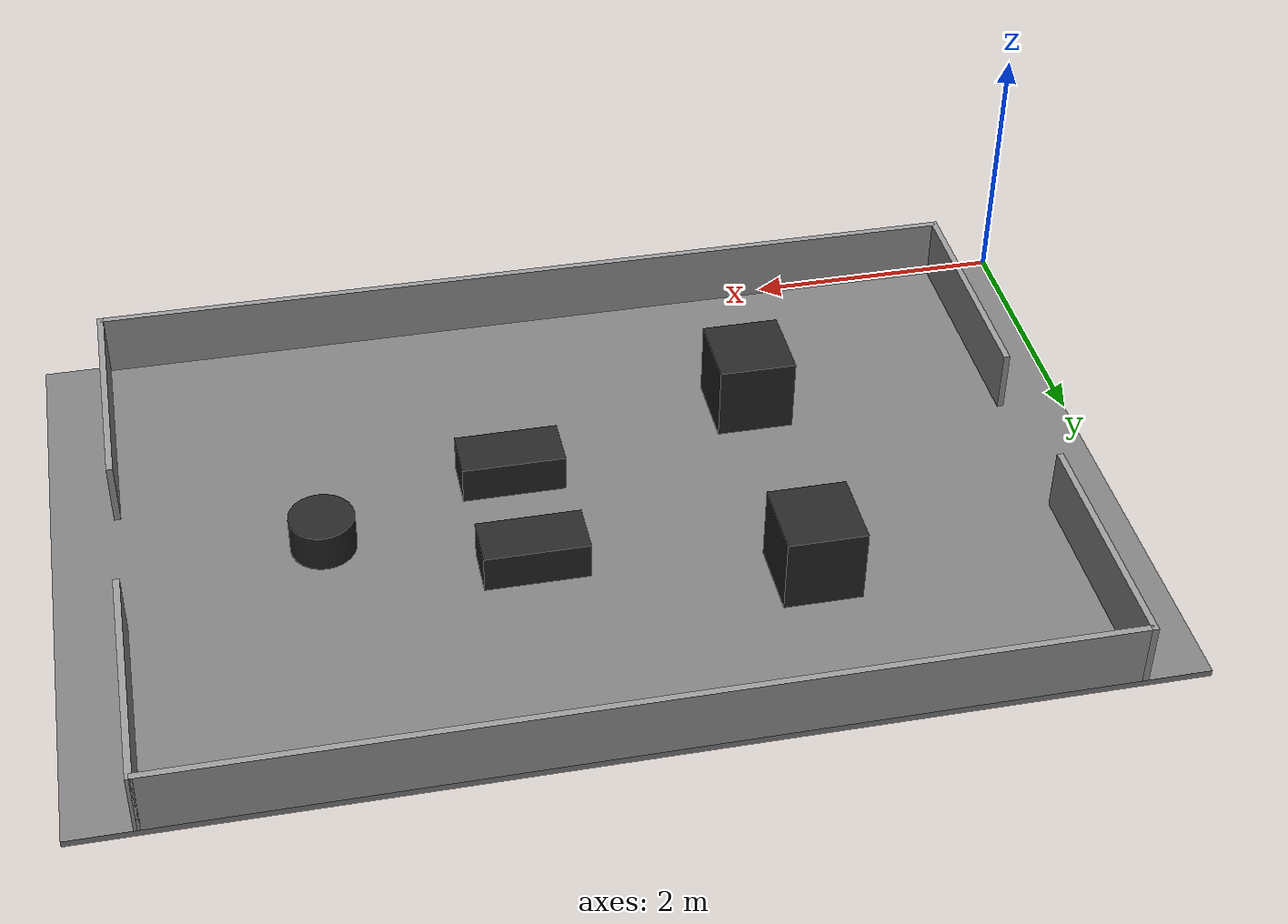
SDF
<?xml version="1.0" ?>
<sdf version="1.6">
  <world name="robot_world">

    <!-- 物理引擎配置                                                   -->
    <physics type="ode">
      <max_step_size>0.001</max_step_size>
      <real_time_factor>1.0</real_time_factor>
      <real_time_update_rate>1000</real_time_update_rate>
    </physics>

    <!-- 场景配置                                                       -->
    <!-- 长8m x 宽5m, 灰色水泥质感地面, 0.05m高                        -->
    <scene>
      <ambient>0.5 0.5 0.5 1.0</ambient>
      <background>0.7 0.7 0.7 1.0</background>
      <shadows>false</shadows>
    </scene>

    <!-- 光照 -->
    <light type="directional" name="sun">
      <pose>0 0 10 0 0 0</pose>
      <diffuse>0.8 0.8 0.8 1</diffuse>
      <specular>0.2 0.2 0.2 1</specular>
      <direction>-0.5 0.5 -0.9</direction>
    </light>

    <!-- 地面 (长8m x 宽5m x 高0.05m, 灰色水泥质感)                   -->
    <model name="ground_plane">
      <static>true</static>
      <pose>4.0 2.5 -0.025 0 0 0</pose>
      <link name="link">
        <visual name="visual">
          <geometry>
            <box>
              <size>8.0 5.0 0.05</size>
            </box>
          </geometry>
          <material>
            <ambient>0.5 0.5 0.5 1</ambient>
            <diffuse>0.5 0.5 0.5 1</diffuse>
            <specular>0.3 0.3 0.3 1</specular>
          </material>
        </visual>
        <collision name="collision">
          <geometry>
            <box>
              <size>8.0 5.0 0.05</size>
            </box>
          </geometry>
          <surface>
            <friction>
              <ode>
                <mu>1.0</mu>
                <mu2>1.0</mu2>
              </ode>
            </friction>
          </surface>
        </collision>
        <inertial>
          <mass>1000</mass>
          <inertia>
            <ixx>1000</ixx>
            <ixy>0</ixy>
            <ixz>0</ixz>
            <iyy>1000</iyy>
            <iyz>0</iyz>
            <izz>1000</izz>
          </inertia>
        </inertial>
      </link>
    </model>

    <!-- 墙壁围栏                                                      -->
    <!-- 入口: 左侧中间 x=0.5, y=1.9~3.1, 宽度1.2m                    -->
    <!-- 出口: 右侧中间 x=7.5, y=1.9~3.1, 宽度1.2m                    -->
    <!-- 墙高: 0.5m, 墙厚: 0.05m                                      -->

    <!-- 左墙 - 下段 (入口下方) -->
    <model name="wall_left_bottom">
      <static>true</static>
      <pose>0.5 0.95 0.25 0 0 0</pose>
      <link name="link">
        <visual name="visual">
          <geometry>
            <box><size>0.05 1.9 0.5</size></box>
          </geometry>
          <material>
            <ambient>0.6 0.6 0.6 1</ambient>
            <diffuse>0.6 0.6 0.6 1</diffuse>
          </material>
        </visual>
        <collision name="collision">
          <geometry>
            <box><size>0.05 1.9 0.5</size></box>
          </geometry>
        </collision>
        <inertial>
          <mass>100</mass>
          <inertia>
            <ixx>100</ixx><ixy>0</ixy><ixz>0</ixz>
            <iyy>100</iyy><iyz>0</iyz><izz>100</izz>
          </inertia>
        </inertial>
      </link>
    </model>

    <!-- 左墙 - 上段 (入口上方) -->
    <model name="wall_left_top">
      <static>true</static>
      <pose>0.5 4.05 0.25 0 0 0</pose>
      <link name="link">
        <visual name="visual">
          <geometry>
            <box><size>0.05 1.9 0.5</size></box>
          </geometry>
          <material>
            <ambient>0.6 0.6 0.6 1</ambient>
            <diffuse>0.6 0.6 0.6 1</diffuse>
          </material>
        </visual>
        <collision name="collision">
          <geometry>
            <box><size>0.05 1.9 0.5</size></box>
          </geometry>
        </collision>
        <inertial>
          <mass>100</mass>
          <inertia>
            <ixx>100</ixx><ixy>0</ixy><ixz>0</ixz>
            <iyy>100</iyy><iyz>0</iyz><izz>100</izz>
          </inertia>
        </inertial>
      </link>
    </model>

    <!-- 右墙 - 下段 (出口下方) -->
    <model name="wall_right_bottom">
      <static>true</static>
      <pose>7.5 0.95 0.25 0 0 0</pose>
      <link name="link">
        <visual name="visual">
          <geometry>
            <box><size>0.05 1.9 0.5</size></box>
          </geometry>
          <material>
            <ambient>0.6 0.6 0.6 1</ambient>
            <diffuse>0.6 0.6 0.6 1</diffuse>
          </material>
        </visual>
        <collision name="collision">
          <geometry>
            <box><size>0.05 1.9 0.5</size></box>
          </geometry>
        </collision>
        <inertial>
          <mass>100</mass>
          <inertia>
            <ixx>100</ixx><ixy>0</ixy><ixz>0</ixz>
            <iyy>100</iyy><iyz>0</iyz><izz>100</izz>
          </inertia>
        </inertial>
      </link>
    </model>

    <!-- 右墙 - 上段 (出口上方) -->
    <model name="wall_right_top">
      <static>true</static>
      <pose>7.5 4.05 0.25 0 0 0</pose>
      <link name="link">
        <visual name="visual">
          <geometry>
            <box><size>0.05 1.9 0.5</size></box>
          </geometry>
          <material>
            <ambient>0.6 0.6 0.6 1</ambient>
            <diffuse>0.6 0.6 0.6 1</diffuse>
          </material>
        </visual>
        <collision name="collision">
          <geometry>
            <box><size>0.05 1.9 0.5</size></box>
          </geometry>
        </collision>
        <inertial>
          <mass>100</mass>
          <inertia>
            <ixx>100</ixx><ixy>0</ixy><ixz>0</ixz>
            <iyy>100</iyy><iyz>0</iyz><izz>100</izz>
          </inertia>
        </inertial>
      </link>
    </model>

    <!-- 上墙 (y=5, 连接左右墙顶部) -->
    <model name="wall_top">
      <static>true</static>
      <pose>4.0 4.975 0.25 0 0 0</pose>
      <link name="link">
        <visual name="visual">
          <geometry>
            <box><size>7.0 0.05 0.5</size></box>
          </geometry>
          <material>
            <ambient>0.6 0.6 0.6 1</ambient>
            <diffuse>0.6 0.6 0.6 1</diffuse>
          </material>
        </visual>
        <collision name="collision">
          <geometry>
            <box><size>7.0 0.05 0.5</size></box>
          </geometry>
        </collision>
        <inertial>
          <mass>100</mass>
          <inertia>
            <ixx>100</ixx><ixy>0</ixy><ixz>0</ixz>
            <iyy>100</iyy><iyz>0</iyz><izz>100</izz>
          </inertia>
        </inertial>
      </link>
    </model>

    <!-- 下墙 (y=0, 连接左右墙底部) -->
    <model name="wall_bottom">
      <static>true</static>
      <pose>4.0 0.025 0.25 0 0 0</pose>
      <link name="link">
        <visual name="visual">
          <geometry>
            <box><size>7.0 0.05 0.5</size></box>
          </geometry>
          <material>
            <ambient>0.6 0.6 0.6 1</ambient>
            <diffuse>0.6 0.6 0.6 1</diffuse>
          </material>
        </visual>
        <collision name="collision">
          <geometry>
            <box><size>7.0 0.05 0.5</size></box>
          </geometry>
        </collision>
        <inertial>
          <mass>100</mass>
          <inertia>
            <ixx>100</ixx><ixy>0</ixy><ixz>0</ixz>
            <iyy>100</iyy><iyz>0</iyz><izz>100</izz>
          </inertia>
        </inertial>
      </link>
    </model>

    <!-- 障碍物 (5个, 黑色塑料质感)                                    -->

    <!-- 障碍物1: 正方体 边长0.6m, 中心(2.5, 1.5, 0.3) -->
    <model name="obstacle_1">
      <static>true</static>
      <pose>2.5 1.5 0.3 0 0 0</pose>
      <link name="link">
        <visual name="visual">
          <geometry>
            <box><size>0.6 0.6 0.6</size></box>
          </geometry>
          <material>
            <ambient>0.1 0.1 0.1 1</ambient>
            <diffuse>0.15 0.15 0.15 1</diffuse>
            <specular>0.3 0.3 0.3 1</specular>
          </material>
        </visual>
        <collision name="collision">
          <geometry>
            <box><size>0.6 0.6 0.6</size></box>
          </geometry>
        </collision>
        <inertial>
          <mass>50</mass>
          <inertia>
            <ixx>3</ixx><ixy>0</ixy><ixz>0</ixz>
            <iyy>3</iyy><iyz>0</iyz><izz>3</izz>
          </inertia>
        </inertial>
      </link>
    </model>

    <!-- 障碍物2: 正方体 边长0.6m, 中心(2.5, 3.5, 0.3) -->
    <model name="obstacle_2">
      <static>true</static>
      <pose>2.5 3.5 0.3 0 0 0</pose>
      <link name="link">
        <visual name="visual">
          <geometry>
            <box><size>0.6 0.6 0.6</size></box>
          </geometry>
          <material>
            <ambient>0.1 0.1 0.1 1</ambient>
            <diffuse>0.15 0.15 0.15 1</diffuse>
            <specular>0.3 0.3 0.3 1</specular>
          </material>
        </visual>
        <collision name="collision">
          <geometry>
            <box><size>0.6 0.6 0.6</size></box>
          </geometry>
        </collision>
        <inertial>
          <mass>50</mass>
          <inertia>
            <ixx>3</ixx><ixy>0</ixy><ixz>0</ixz>
            <iyy>3</iyy><iyz>0</iyz><izz>3</izz>
          </inertia>
        </inertial>
      </link>
    </model>

    <!-- 障碍物3: 长方体 0.8x0.4x0.3m, 中心(4.5, 2.0, 0.15) -->
    <model name="obstacle_3">
      <static>true</static>
      <pose>4.5 2.0 0.15 0 0 0</pose>
      <link name="link">
        <visual name="visual">
          <geometry>
            <box><size>0.8 0.4 0.3</size></box>
          </geometry>
          <material>
            <ambient>0.1 0.1 0.1 1</ambient>
            <diffuse>0.15 0.15 0.15 1</diffuse>
            <specular>0.3 0.3 0.3 1</specular>
          </material>
        </visual>
        <collision name="collision">
          <geometry>
            <box><size>0.8 0.4 0.3</size></box>
          </geometry>
        </collision>
        <inertial>
          <mass>50</mass>
          <inertia>
            <ixx>1.5</ixx><ixy>0</ixy><ixz>0</ixz>
            <iyy>3</iyy><iyz>0</iyz><izz>3</izz>
          </inertia>
        </inertial>
      </link>
    </model>

    <!-- 障碍物4: 长方体 0.8x0.4x0.3m, 中心(4.5, 3.0, 0.15) -->
    <model name="obstacle_4">
      <static>true</static>
      <pose>4.5 3.0 0.15 0 0 0</pose>
      <link name="link">
        <visual name="visual">
          <geometry>
            <box><size>0.8 0.4 0.3</size></box>
          </geometry>
          <material>
            <ambient>0.1 0.1 0.1 1</ambient>
            <diffuse>0.15 0.15 0.15 1</diffuse>
            <specular>0.3 0.3 0.3 1</specular>
          </material>
        </visual>
        <collision name="collision">
          <geometry>
            <box><size>0.8 0.4 0.3</size></box>
          </geometry>
        </collision>
        <inertial>
          <mass>50</mass>
          <inertia>
            <ixx>1.5</ixx><ixy>0</ixy><ixz>0</ixz>
            <iyy>3</iyy><iyz>0</iyz><izz>3</izz>
          </inertia>
        </inertial>
      </link>
    </model>

    <!-- 障碍物5: 圆柱体 直径0.5m 高0.3m, 中心(6.0, 2.5, 0.15) -->
    <model name="obstacle_5">
      <static>true</static>
      <pose>6.0 2.5 0.15 0 0 0</pose>
      <link name="link">
        <visual name="visual">
          <geometry>
            <cylinder>
              <radius>0.25</radius>
              <length>0.3</length>
            </cylinder>
          </geometry>
          <material>
            <ambient>0.1 0.1 0.1 1</ambient>
            <diffuse>0.15 0.15 0.15 1</diffuse>
            <specular>0.3 0.3 0.3 1</specular>
          </material>
        </visual>
        <collision name="collision">
          <geometry>
            <cylinder>
              <radius>0.25</radius>
              <length>0.3</length>
            </cylinder>
          </geometry>
        </collision>
        <inertial>
          <mass>50</mass>
          <inertia>
            <ixx>1.5</ixx><ixy>0</ixy><ixz>0</ixz>
            <iyy>1.5</iyy><iyz>0</iyz><izz>1.5</izz>
          </inertia>
        </inertial>
      </link>
    </model>

  </world>
</sdf>
